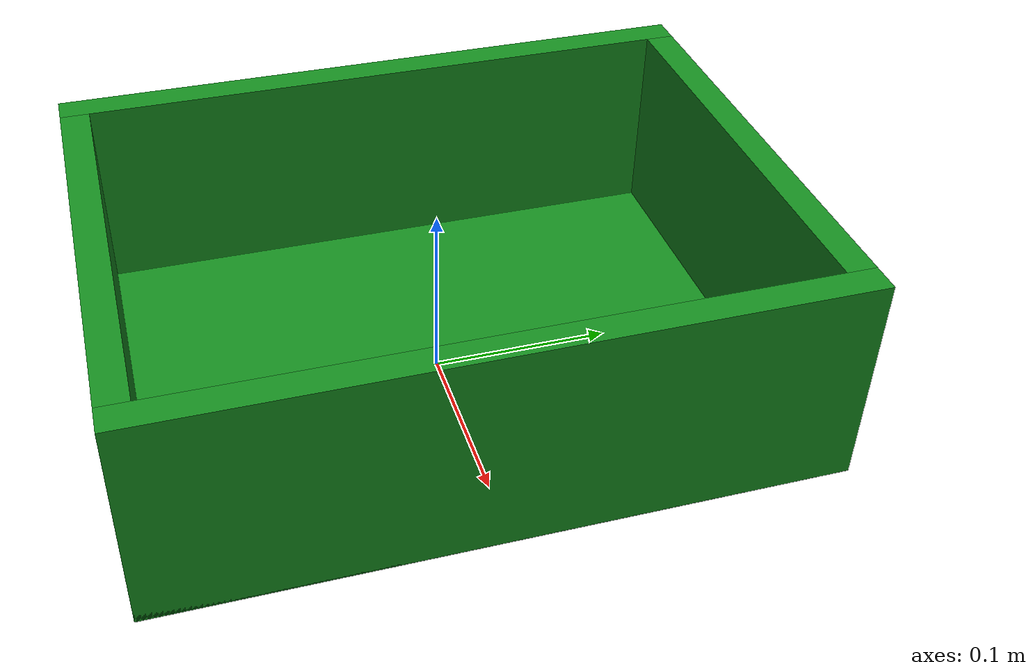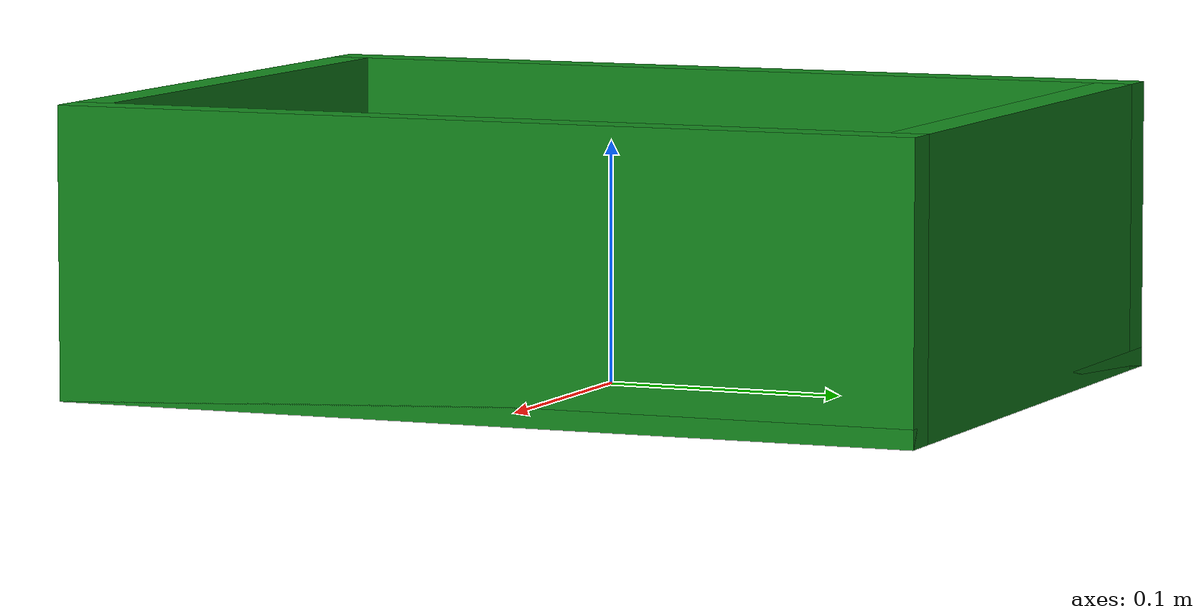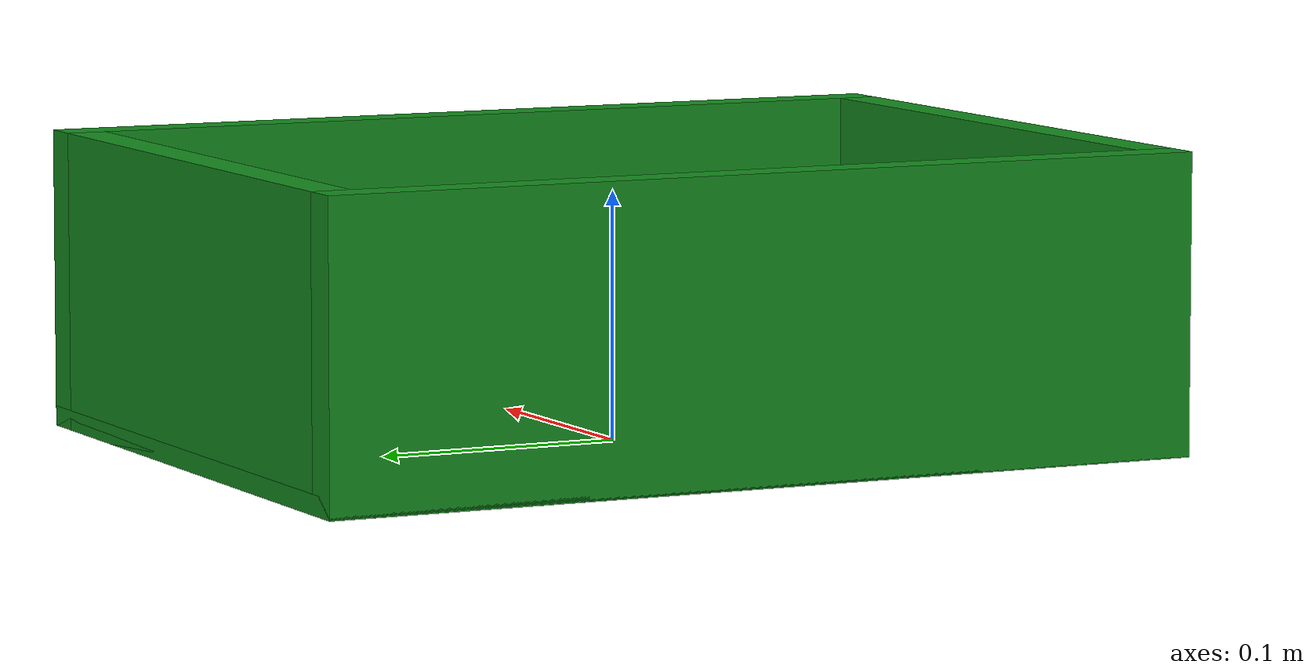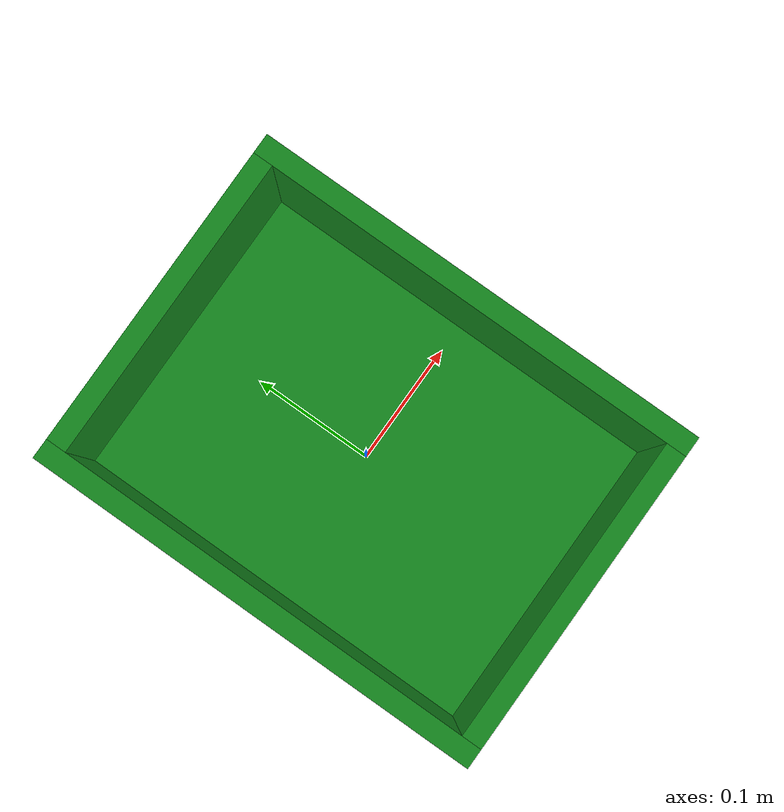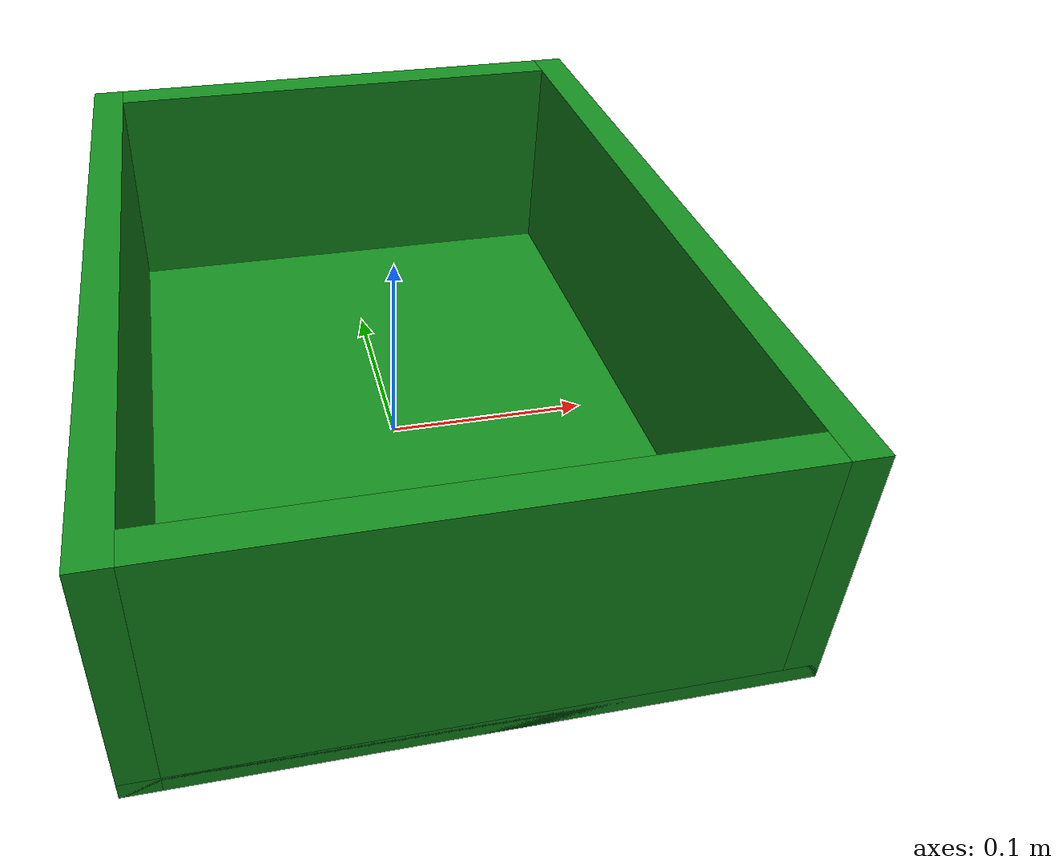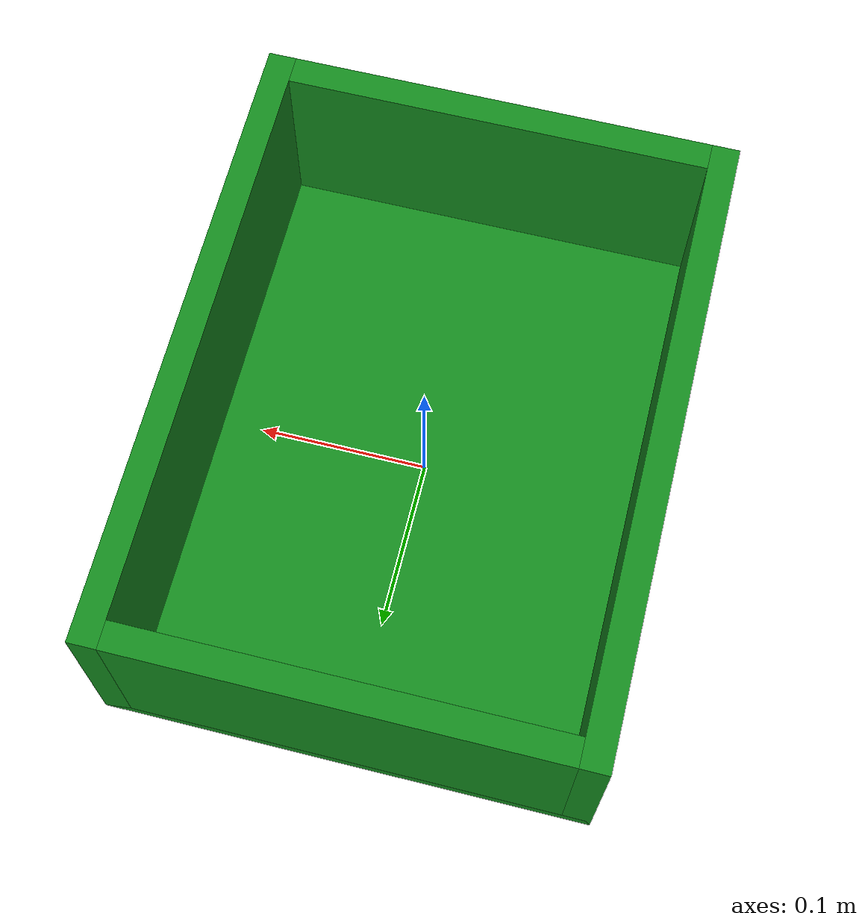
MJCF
<?xml version="1.0" encoding="utf-8"?>
<mujoco model="task4_green_box_primitive">
  <compiler angle="radian" autolimits="true"/>
  <asset>
    <material name="green_box_material" rgba="0.08 0.55 0.12 1" specular="0.18" shininess="0.25"/>
  </asset>
  <worldbody>
    <body name="object">
      <!-- Dimensions reproduce collision_coacd/coacd_summary.json exactly. -->
      <geom name="floor_collision" type="box" pos="0 0 0.004"
            size="0.1384493992 0.183 0.004" material="green_box_material"
            group="1" contype="1" conaffinity="1" condim="4"
            friction="1.0 0.05 0.01" solref="0.004 1.0" solimp="0.95 0.99 0.001"/>
      <geom name="wall_x_negative_collision" type="box" pos="-0.1304493992 0 0.06"
            size="0.008 0.183 0.06" material="green_box_material"
            group="1" contype="1" conaffinity="1" condim="4"
            friction="1.0 0.05 0.01" solref="0.004 1.0" solimp="0.95 0.99 0.001"/>
      <geom name="wall_x_positive_collision" type="box" pos="0.1304493992 0 0.06"
            size="0.008 0.183 0.06" material="green_box_material"
            group="1" contype="1" conaffinity="1" condim="4"
            friction="1.0 0.05 0.01" solref="0.004 1.0" solimp="0.95 0.99 0.001"/>
      <geom name="wall_y_negative_collision" type="box" pos="0 -0.175 0.06"
            size="0.1224493992 0.008 0.06" material="green_box_material"
            group="1" contype="1" conaffinity="1" condim="4"
            friction="1.0 0.05 0.01" solref="0.004 1.0" solimp="0.95 0.99 0.001"/>
      <geom name="wall_y_positive_collision" type="box" pos="0 0.175 0.06"
            size="0.1224493992 0.008 0.06" material="green_box_material"
            group="1" contype="1" conaffinity="1" condim="4"
            friction="1.0 0.05 0.01" solref="0.004 1.0" solimp="0.95 0.99 0.001"/>
    </body>
  </worldbody>
</mujoco>
